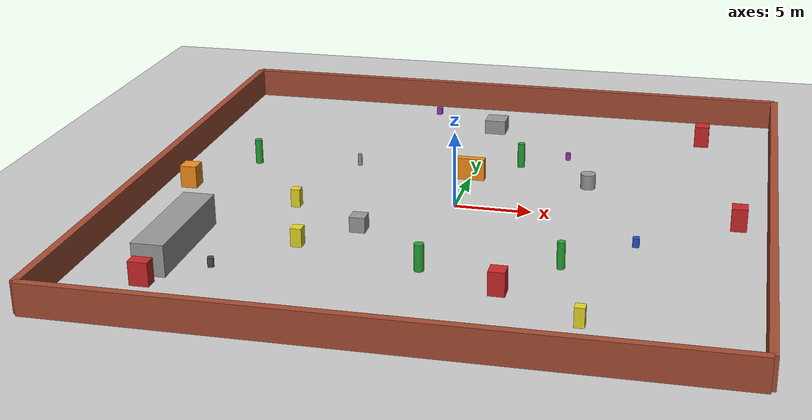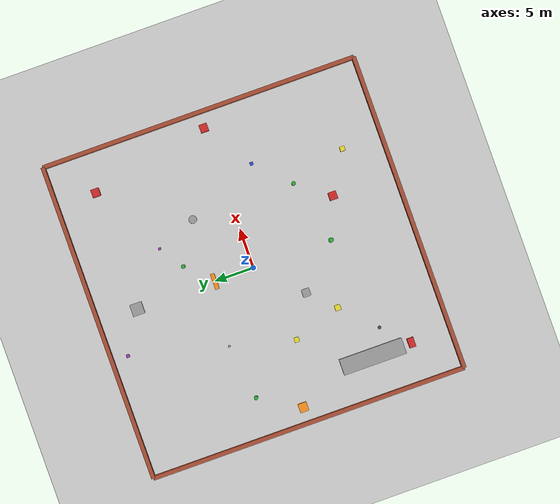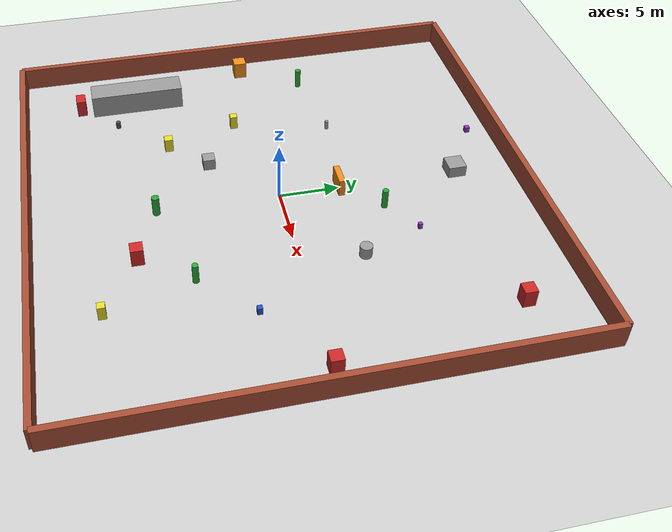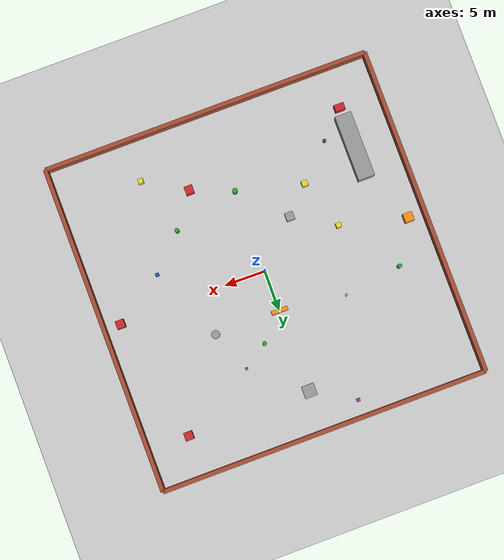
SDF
<sdf version='1.7'>
  <world name='default'>

    <!-- ================= 基础环境 ================= -->
    <light name='sun' type='directional'>
      <cast_shadows>1</cast_shadows>
      <pose>0 0 10 0 -0 0</pose>
      <diffuse>0.8 0.8 0.8 1</diffuse>
      <specular>0.2 0.2 0.2 1</specular>
      <attenuation>
        <range>1000</range>
        <constant>0.9</constant>
        <linear>0.01</linear>
        <quadratic>0.001</quadratic>
      </attenuation>
      <direction>-0.5 0.1 -0.9</direction>
    </light>

    <model name='ground_plane'>
      <static>1</static>
      <link name='link'>
        <collision name='collision'>
          <geometry><plane><normal>0 0 1</normal><size>100 100</size></plane></geometry>
          <surface><friction><ode><mu>100</mu><mu2>50</mu2></ode></friction></surface>
        </collision>
        <visual name='visual'>
          <cast_shadows>0</cast_shadows>
          <geometry><plane><normal>0 0 1</normal><size>100 100</size></plane></geometry>
          <material><script><uri>file://media/materials/scripts/gazebo.material</uri><name>Gazebo/Grey</name></script></material>
        </visual>
      </link>
    </model>

    <gravity>0 0 -9.8</gravity>

    <gui fullscreen='0'>
      <camera name='user_camera'>
        <pose>0 -30 40 0 0.9 1.57</pose>
        <view_controller>orbit</view_controller>
      </camera>
    </gui>

    <!-- ================= 边界墙 (40m x 40m) ================= -->
    <model name='boundary_walls'>
      <static>1</static>
      <link name='walls'>
        <collision name='collision_north'><pose>0 20 1 0 0 0</pose><geometry><box><size>40 0.5 2</size></box></geometry></collision>
        <visual name='visual_north'><pose>0 20 1 0 0 0</pose><geometry><box><size>40 0.5 2</size></box></geometry><material><script><name>Gazebo/Bricks</name><uri>file://media/materials/scripts/gazebo.material</uri></script></material></visual>

        <collision name='collision_south'><pose>0 -20 1 0 0 0</pose><geometry><box><size>40 0.5 2</size></box></geometry></collision>
        <visual name='visual_south'><pose>0 -20 1 0 0 0</pose><geometry><box><size>40 0.5 2</size></box></geometry><material><script><name>Gazebo/Bricks</name><uri>file://media/materials/scripts/gazebo.material</uri></script></material></visual>

        <collision name='collision_east'><pose>20 0 1 0 0 0</pose><geometry><box><size>0.5 40 2</size></box></geometry></collision>
        <visual name='visual_east'><pose>20 0 1 0 0 0</pose><geometry><box><size>0.5 40 2</size></box></geometry><material><script><name>Gazebo/Bricks</name><uri>file://media/materials/scripts/gazebo.material</uri></script></material></visual>

        <collision name='collision_west'><pose>-20 0 1 0 0 0</pose><geometry><box><size>0.5 40 2</size></box></geometry></collision>
        <visual name='visual_west'><pose>-20 0 1 0 0 0</pose><geometry><box><size>0.5 40 2</size></box></geometry><material><script><name>Gazebo/Bricks</name><uri>file://media/materials/scripts/gazebo.material</uri></script></material></visual>
      </link>
    </model>

    <!-- ================= 静态障碍物 ================= -->
    <model name='static_box_1'>
      <pose>-5 -5 0.5 0 0 0</pose>
      <static>1</static>
      <link name='link'>
        <collision name='collision'><geometry><box><size>1 1 1</size></box></geometry></collision>
        <visual name='visual'><geometry><box><size>1 1 1</size></box></geometry><material><script><name>Gazebo/Grey</name><uri>file://media/materials/scripts/gazebo.material</uri></script></material></visual>
      </link>
    </model>

    <!-- [新增] 静态障碍物 2: 圆柱体 -->
    <model name='static_cylinder_2'>
      <pose>8 5 0.5 0 0 0</pose>
      <static>1</static>
      <link name='link'>
        <collision name='collision'><geometry><cylinder><radius>0.5</radius><length>1</length></cylinder></geometry></collision>
        <visual name='visual'><geometry><cylinder><radius>0.5</radius><length>1</length></cylinder></geometry><material><script><name>Gazebo/Grey</name><uri>file://media/materials/scripts/gazebo.material</uri></script></material></visual>
      </link>
    </model>

    <!-- [新增] 静态障碍物 3: 长条墙体 -->
    <model name='static_wall_3'>
      <pose>-15 -10 1 0 0 0</pose>
      <static>1</static>
      <link name='link'>
        <collision name='collision'><geometry><box><size>2 8 2</size></box></geometry></collision>
        <visual name='visual'><geometry><box><size>2 8 2</size></box></geometry><material><script><name>Gazebo/Grey</name><uri>file://media/materials/scripts/gazebo.material</uri></script></material></visual>
      </link>
    </model>

    <!-- [新增] 静态障碍物 4: 正方体 -->
    <model name='static_box_4'>
      <pose>0 15 0.5 0 0 0</pose>
      <static>1</static>
      <link name='link'>
        <collision name='collision'><geometry><box><size>1.5 1.5 1</size></box></geometry></collision>
        <visual name='visual'><geometry><box><size>1.5 1.5 1</size></box></geometry><material><script><name>Gazebo/Grey</name><uri>file://media/materials/scripts/gazebo.material</uri></script></material></visual>
      </link>
    </model>

    <!-- ================= 动态障碍物 (已改为 Model，等待 Python 控制) ================= -->

<model name="obs_small_1">
      <pose>-5 -5 0.3 0 0 0</pose> <static>0</static>
      <link name="link">
        <inertial><mass>0.5</mass><inertia><ixx>0.01</ixx><iyy>0.01</iyy><izz>0.01</izz><ixy>0</ixy><ixz>0</ixz><iyz>0</iyz></inertia></inertial>
        <visual name="visual">
          <geometry><box><size>0.4 0.4 0.6</size></box></geometry>
          <material><script><name>Gazebo/Blue</name><uri>file://media/materials/scripts/gazebo.material</uri></script></material>
        </visual>
        <collision name="collision"><geometry><box><size>0.4 0.4 0.6</size></box></geometry></collision>
      </link>
    </model>

    <model name="obs_small_2">
      <pose>-8 6 0.4 0 0 0</pose> <static>0</static>
      <link name="link">
        <inertial><mass>0.5</mass><inertia><ixx>0.01</ixx><iyy>0.01</iyy><izz>0.01</izz><ixy>0</ixy><ixz>0</ixz><iyz>0</iyz></inertia></inertial>
        <visual name="visual">
          <geometry><cylinder><radius>0.15</radius><length>0.8</length></cylinder></geometry>
          <material><script><name>Gazebo/Grey</name><uri>file://media/materials/scripts/gazebo.material</uri></script></material>
        </visual>
        <collision name="collision"><geometry><cylinder><radius>0.15</radius><length>0.8</length></cylinder></geometry></collision>
      </link>
    </model>

    <model name="obs_small_3">
      <pose>6 10 0.25 0 0 0</pose> <static>0</static>
      <link name="link">
        <inertial><mass>0.5</mass><inertia><ixx>0.01</ixx><iyy>0.01</iyy><izz>0.01</izz><ixy>0</ixy><ixz>0</ixz><iyz>0</iyz></inertia></inertial>
        <visual name="visual">
          <geometry><box><size>0.3 0.3 0.5</size></box></geometry>
          <material><script><name>Gazebo/Purple</name><uri>file://media/materials/scripts/gazebo.material</uri></script></material>
        </visual>
        <collision name="collision"><geometry><box><size>0.3 0.3 0.5</size></box></geometry></collision>
      </link>
    </model>

    <model name="obs_small_4">
      <pose>12 -4 0.3 0 0 0</pose>
      <static>0</static>
      <link name="link">
        <inertial><mass>0.5</mass><inertia><ixx>0.01</ixx><iyy>0.01</iyy><izz>0.01</izz><ixy>0</ixy><ixz>0</ixz><iyz>0</iyz></inertia></inertial>
        <visual name="visual"><geometry><box><size>0.4 0.4 0.6</size></box></geometry>
          <material><script><name>Gazebo/Blue</name><uri>file://media/materials/scripts/gazebo.material</uri></script></material>
        </visual>
        <collision name="collision"><geometry><box><size>0.4 0.4 0.6</size></box></geometry></collision>
      </link>
    </model>

    <model name="obs_small_5">
      <pose>-12 -12 0.3 0 0 0</pose>
      <static>0</static>
      <link name="link">
        <inertial><mass>0.5</mass><inertia><ixx>0.01</ixx><iyy>0.01</iyy><izz>0.01</izz><ixy>0</ixy><ixz>0</ixz><iyz>0</iyz></inertia></inertial>
        <visual name="visual"><geometry><cylinder><radius>0.2</radius><length>0.6</length></cylinder></geometry>
          <material><script><name>Gazebo/DarkGrey</name><uri>file://media/materials/scripts/gazebo.material</uri></script></material>
        </visual>
        <collision name="collision"><geometry><cylinder><radius>0.2</radius><length>0.6</length></cylinder></geometry></collision>
      </link>
    </model>

    <model name="obs_small_6">
      <pose>0 15 0.3 0 0 0</pose>
      <static>0</static>
      <link name="link">
        <inertial><mass>0.5</mass><inertia><ixx>0.01</ixx><iyy>0.01</iyy><izz>0.01</izz><ixy>0</ixy><ixz>0</ixz><iyz>0</iyz></inertia></inertial>
        <visual name="visual"><geometry><box><size>0.5 0.5 0.6</size></box></geometry>
          <material><script><name>Gazebo/Blue</name><uri>file://media/materials/scripts/gazebo.material</uri></script></material>
        </visual>
        <collision name="collision"><geometry><box><size>0.5 0.5 0.6</size></box></geometry></collision>
      </link>
    </model>

    <model name="obs_small_7">
      <pose>-5 18 0.25 0 0 0</pose>
      <static>0</static>
      <link name="link">
        <inertial><mass>0.5</mass><inertia><ixx>0.01</ixx><iyy>0.01</iyy><izz>0.01</izz><ixy>0</ixy><ixz>0</ixz><iyz>0</iyz></inertia></inertial>
        <visual name="visual"><geometry><box><size>0.4 0.4 0.5</size></box></geometry>
          <material><script><name>Gazebo/Purple</name><uri>file://media/materials/scripts/gazebo.material</uri></script></material>
        </visual>
        <collision name="collision"><geometry><box><size>0.4 0.4 0.5</size></box></geometry></collision>
      </link>
    </model>

    <model name="obs_med_1">
      <pose>8 -8 0.85 0 0 0</pose> <static>0</static>
      <link name="link">
        <inertial><mass>1.0</mass><inertia><ixx>0.1</ixx><iyy>0.1</iyy><izz>0.05</izz><ixy>0</ixy><ixz>0</ixz><iyz>0</iyz></inertia></inertial>
        <visual name="visual">
          <geometry><cylinder><radius>0.25</radius><length>1.7</length></cylinder></geometry>
          <material><script><name>Gazebo/Green</name><uri>file://media/materials/scripts/gazebo.material</uri></script></material>
        </visual>
        <collision name="collision"><geometry><cylinder><radius>0.25</radius><length>1.7</length></cylinder></geometry></collision>
      </link>
    </model>

    <model name="obs_med_2">
      <pose>-10 -2 0.6 0 0 0</pose> <static>0</static>
      <link name="link">
        <inertial><mass>1.0</mass><inertia><ixx>0.1</ixx><iyy>0.1</iyy><izz>0.1</izz><ixy>0</ixy><ixz>0</ixz><iyz>0</iyz></inertia></inertial>
        <visual name="visual">
          <geometry><box><size>0.6 0.6 1.2</size></box></geometry>
          <material><script><name>Gazebo/Yellow</name><uri>file://media/materials/scripts/gazebo.material</uri></script></material>
        </visual>
        <collision name="collision"><geometry><box><size>0.6 0.6 1.2</size></box></geometry></collision>
      </link>
    </model>

    <model name="obs_med_3">
      <pose>3 8 0.85 0 0 0</pose>
      <static>0</static>
      <link name="link">
        <inertial><mass>1.0</mass><inertia><ixx>0.1</ixx><iyy>0.1</iyy><izz>0.05</izz><ixy>0</ixy><ixz>0</ixz><iyz>0</iyz></inertia></inertial>
        <visual name="visual"><geometry><cylinder><radius>0.25</radius><length>1.7</length></cylinder></geometry>
          <material><script><name>Gazebo/Green</name><uri>file://media/materials/scripts/gazebo.material</uri></script></material>
        </visual>
        <collision name="collision"><geometry><cylinder><radius>0.25</radius><length>1.7</length></cylinder></geometry></collision>
      </link>
    </model>

    <model name="obs_med_4">
      <pose>-15 5 0.85 0 0 0</pose>
      <static>0</static>
      <link name="link">
        <inertial><mass>1.0</mass><inertia><ixx>0.1</ixx><iyy>0.1</iyy><izz>0.05</izz><ixy>0</ixy><ixz>0</ixz><iyz>0</iyz></inertia></inertial>
        <visual name="visual"><geometry><cylinder><radius>0.25</radius><length>1.7</length></cylinder></geometry>
          <material><script><name>Gazebo/Green</name><uri>file://media/materials/scripts/gazebo.material</uri></script></material>
        </visual>
        <collision name="collision"><geometry><cylinder><radius>0.25</radius><length>1.7</length></cylinder></geometry></collision>
      </link>
    </model>

    <model name="obs_med_5">
      <pose>10 -15 0.6 0 0 0</pose>
      <static>0</static>
      <link name="link">
        <inertial><mass>1.0</mass><inertia><ixx>0.1</ixx><iyy>0.1</iyy><izz>0.1</izz><ixy>0</ixy><ixz>0</ixz><iyz>0</iyz></inertia></inertial>
        <visual name="visual"><geometry><box><size>0.6 0.6 1.2</size></box></geometry>
          <material><script><name>Gazebo/Yellow</name><uri>file://media/materials/scripts/gazebo.material</uri></script></material>
        </visual>
        <collision name="collision"><geometry><box><size>0.6 0.6 1.2</size></box></geometry></collision>
      </link>
    </model>

    <model name="obs_med_6">
      <pose>0 -10 0.85 0 0 0</pose>
      <static>0</static>
      <link name="link">
        <inertial><mass>1.0</mass><inertia><ixx>0.1</ixx><iyy>0.1</iyy><izz>0.05</izz><ixy>0</ixy><ixz>0</ixz><iyz>0</iyz></inertia></inertial>
        <visual name="visual"><geometry><cylinder><radius>0.3</radius><length>1.7</length></cylinder></geometry>
          <material><script><name>Gazebo/Green</name><uri>file://media/materials/scripts/gazebo.material</uri></script></material>
        </visual>
        <collision name="collision"><geometry><cylinder><radius>0.3</radius><length>1.7</length></cylinder></geometry></collision>
      </link>
    </model>

    <model name="obs_med_7">
      <pose>-8 -8 0.6 0 0 0</pose>
      <static>0</static>
      <link name="link">
        <inertial><mass>1.0</mass><inertia><ixx>0.1</ixx><iyy>0.1</iyy><izz>0.1</izz><ixy>0</ixy><ixz>0</ixz><iyz>0</iyz></inertia></inertial>
        <visual name="visual"><geometry><box><size>0.7 0.7 1.2</size></box></geometry>
          <material><script><name>Gazebo/Yellow</name><uri>file://media/materials/scripts/gazebo.material</uri></script></material>
        </visual>
        <collision name="collision"><geometry><box><size>0.7 0.7 1.2</size></box></geometry></collision>
      </link>
    </model>

    <model name="obs_large_1">
      <pose>15 15 0.75 0 0 0</pose> <static>0</static>
      <link name="link">
        <inertial><mass>3.0</mass><inertia><ixx>0.5</ixx><iyy>0.5</iyy><izz>0.5</izz><ixy>0</ixy><ixz>0</ixz><iyz>0</iyz></inertia></inertial>
        <visual name="visual">
          <geometry><box><size>1.0 1.0 1.5</size></box></geometry>
          <material><script><name>Gazebo/Red</name><uri>file://media/materials/scripts/gazebo.material</uri></script></material>
        </visual>
        <collision name="collision"><geometry><box><size>1.0 1.0 1.5</size></box></geometry></collision>
      </link>
    </model>

    <model name="obs_large_2">
      <pose>-15 -15 0.75 0 0 0</pose>
      <static>0</static>
      <link name="link">
        <inertial><mass>3.0</mass><inertia><ixx>0.5</ixx><iyy>0.5</iyy><izz>0.5</izz><ixy>0</ixy><ixz>0</ixz><iyz>0</iyz></inertia></inertial>
        <visual name="visual"><geometry><box><size>1.2 0.8 1.5</size></box></geometry>
          <material><script><name>Gazebo/Red</name><uri>file://media/materials/scripts/gazebo.material</uri></script></material>
        </visual>
        <collision name="collision"><geometry><box><size>1.2 0.8 1.5</size></box></geometry></collision>
      </link>
    </model>

    <model name="obs_large_3">
      <pose>0 5 0.75 0 0 1.57</pose> <static>0</static>
      <link name="link">
        <inertial><mass>5.0</mass><inertia><ixx>1.0</ixx><iyy>1.0</iyy><izz>1.0</izz><ixy>0</ixy><ixz>0</ixz><iyz>0</iyz></inertia></inertial>
        <visual name="visual"><geometry><box><size>0.5 2.0 1.5</size></box></geometry>
          <material><script><name>Gazebo/Orange</name><uri>file://media/materials/scripts/gazebo.material</uri></script></material>
        </visual>
        <collision name="collision"><geometry><box><size>0.5 2.0 1.5</size></box></geometry></collision>
      </link>
    </model>

    <model name="obs_large_4">
      <pose>5 -12 0.75 0 0 0</pose>
      <static>0</static>
      <link name="link">
        <inertial><mass>3.0</mass><inertia><ixx>0.5</ixx><iyy>0.5</iyy><izz>0.5</izz><ixy>0</ixy><ixz>0</ixz><iyz>0</iyz></inertia></inertial>
        <visual name="visual"><geometry><box><size>1.0 1.0 1.5</size></box></geometry>
          <material><script><name>Gazebo/Red</name><uri>file://media/materials/scripts/gazebo.material</uri></script></material>
        </visual>
        <collision name="collision"><geometry><box><size>1.0 1.0 1.5</size></box></geometry></collision>
      </link>
    </model>

    <model name="obs_large_5">
      <pose>-18 0 0.75 0 0 0</pose>
      <static>0</static>
      <link name="link">
        <inertial><mass>3.0</mass><inertia><ixx>0.5</ixx><iyy>0.5</iyy><izz>0.5</izz><ixy>0</ixy><ixz>0</ixz><iyz>0</iyz></inertia></inertial>
        <visual name="visual"><geometry><box><size>1.1 1.1 1.5</size></box></geometry>
          <material><script><name>Gazebo/Orange</name><uri>file://media/materials/scripts/gazebo.material</uri></script></material>
        </visual>
        <collision name="collision"><geometry><box><size>1.1 1.1 1.5</size></box></geometry></collision>
      </link>
    </model>

    <model name="obs_large_6">
      <pose>18 0 0.75 0 0 0</pose>
      <static>0</static>
      <link name="link">
        <inertial><mass>3.0</mass><inertia><ixx>0.5</ixx><iyy>0.5</iyy><izz>0.5</izz><ixy>0</ixy><ixz>0</ixz><iyz>0</iyz></inertia></inertial>
        <visual name="visual"><geometry><box><size>1.0 1.0 1.5</size></box></geometry>
          <material><script><name>Gazebo/Red</name><uri>file://media/materials/scripts/gazebo.material</uri></script></material>
        </visual>
        <collision name="collision"><geometry><box><size>1.0 1.0 1.5</size></box></geometry></collision>
      </link>
    </model>

<physics type='ode'>
  <max_step_size>0.001</max_step_size>
  <real_time_factor>0.5</real_time_factor>
  <real_time_update_rate>500</real_time_update_rate>
</physics>

  </world>
</sdf>
